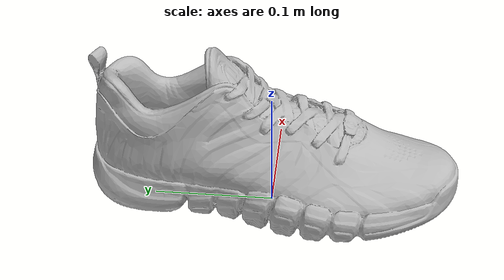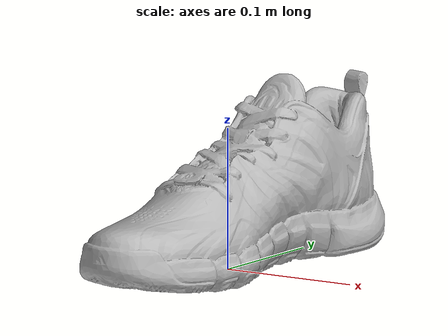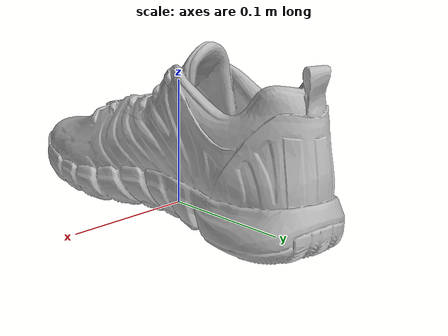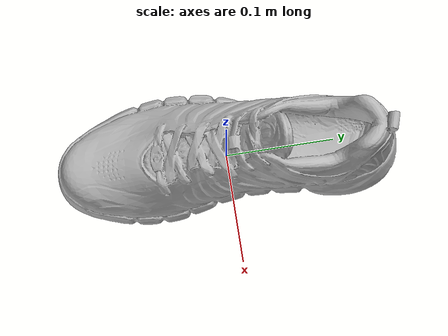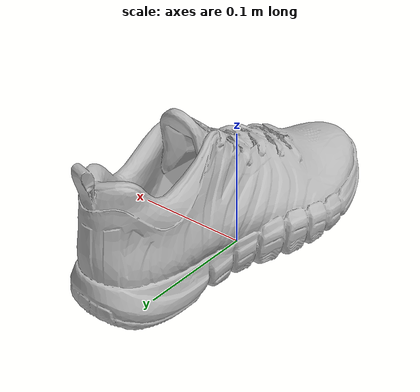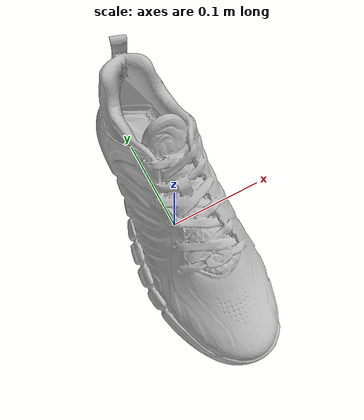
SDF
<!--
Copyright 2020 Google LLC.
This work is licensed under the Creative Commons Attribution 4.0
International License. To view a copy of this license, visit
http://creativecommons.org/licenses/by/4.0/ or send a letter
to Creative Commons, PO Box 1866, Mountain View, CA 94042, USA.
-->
<?xml version="1.0" ?>
<sdf version="1.6">
  <model name="D_ROSE_ENGLEWOOD_II">
    <link name="link_0">
      <visual name="visual">
        <geometry>
          <mesh>
            <uri>/home/xiaomeng/code/robot_ws/src/robot_gazebo/panda_gazebo/worlds/D_ROSE_ENGLEWOOD_II/meshes/model.obj</uri>
          </mesh>
        </geometry>
      </visual>
      <collision name="collision_0">
        <geometry>
          <mesh>
            <uri>/home/xiaomeng/code/robot_ws/src/robot_gazebo/panda_gazebo/worlds/D_ROSE_ENGLEWOOD_II/meshes/model.obj</uri>
          </mesh>
        </geometry>
      </collision>
    </link>
  </model>
</sdf>
